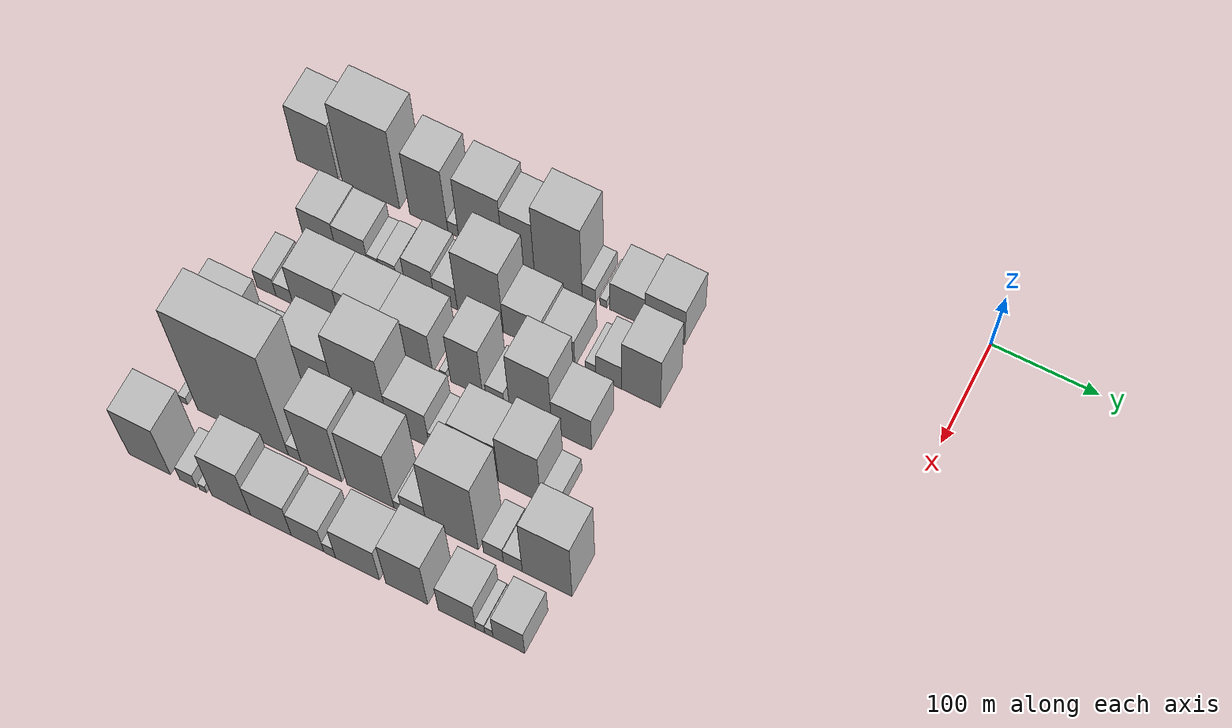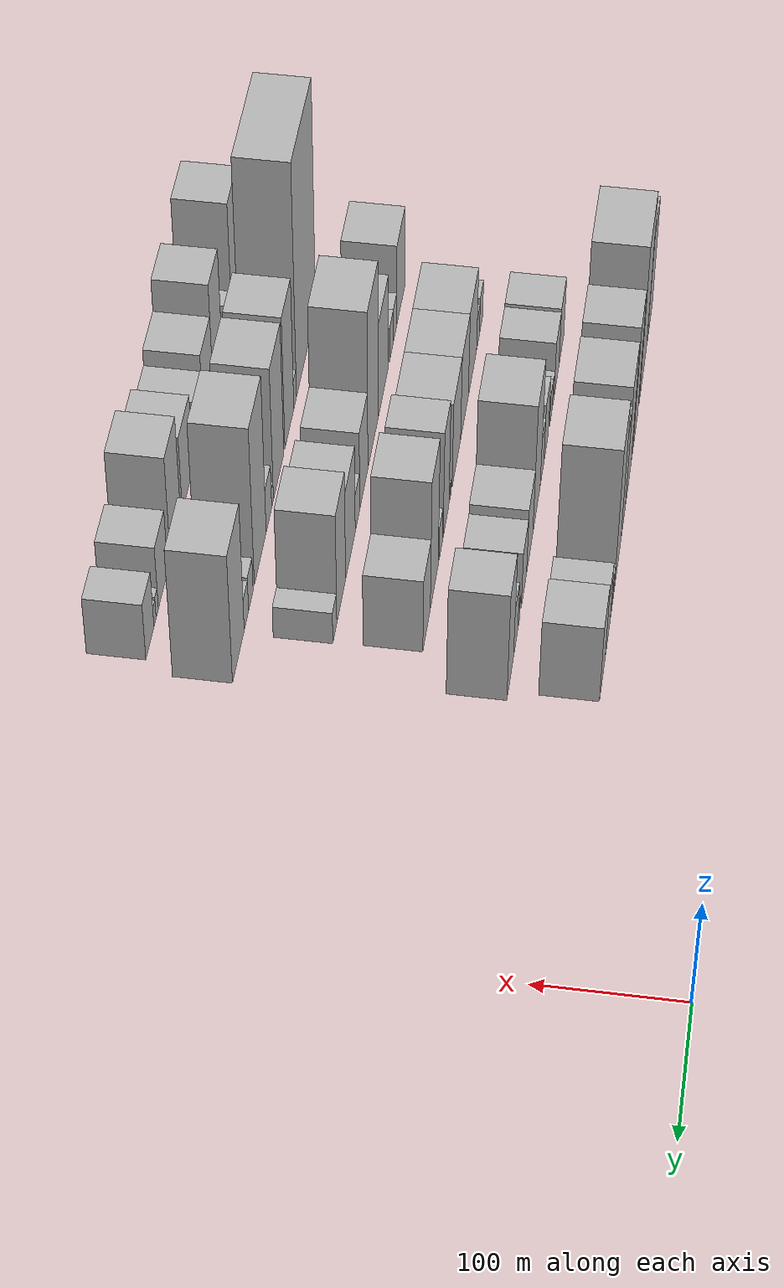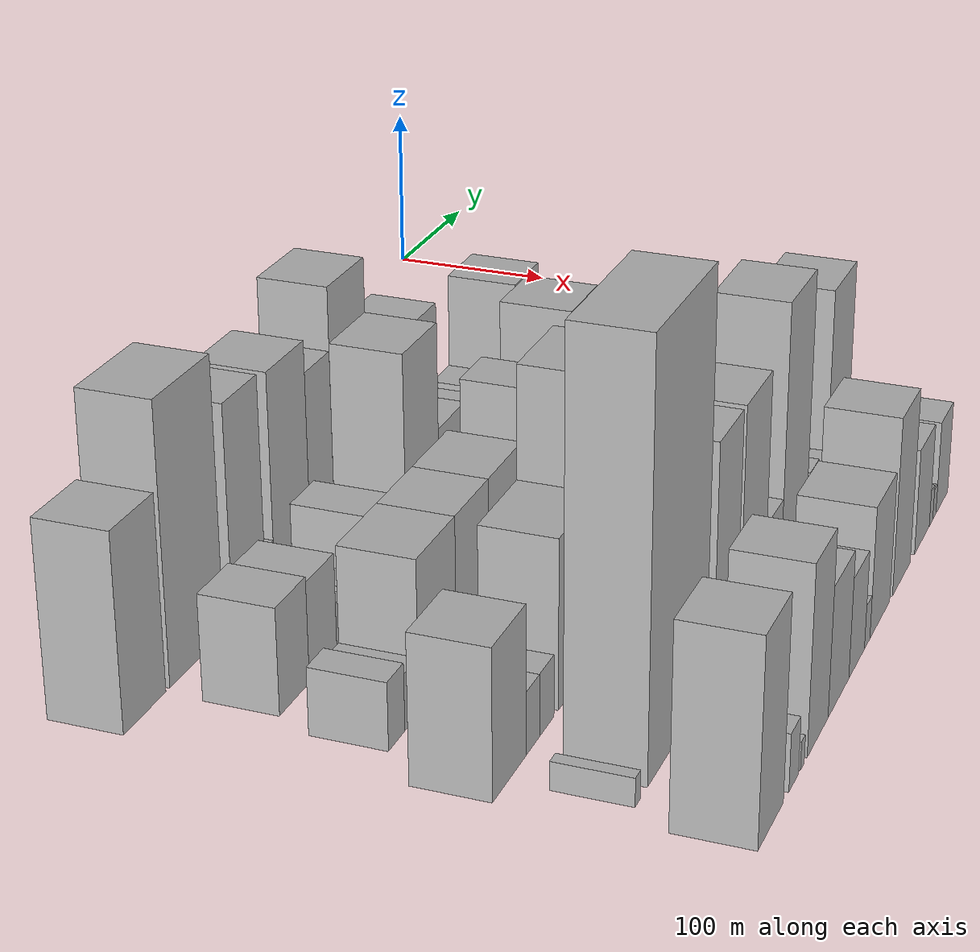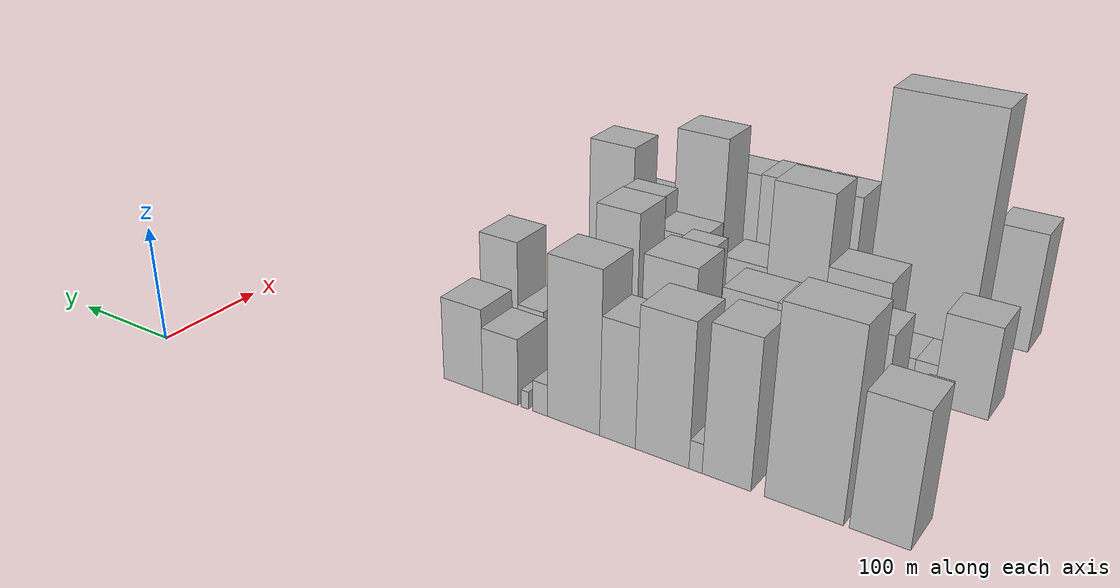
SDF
<sdf version="1.6">
 <world name="default">
  <model name="building_12">
   <static>1</static>
   <pose>100.0000 -589.0660 0 0.000000 0.000000 0.000000</pose>
   <link name="link">
    <pose>0 0 52.50 0 0 0</pose>
    <collision name="collision"><geometry><box><size>40.0000 41.7099 105.0000</size></box></geometry></collision>
    <visual name="visual">
     <cast_shadows>0</cast_shadows>
     <geometry><box><size>40.0000 41.7099 105.0000</size></box></geometry>
     <material>
      <script>
       <uri>model://HANNAS_wall/materials/scripts</uri>
       <uri>model://HANNAS_wall/materials/textures</uri>
       <name>vrc/HANNAS_wall</name>
      </script>
     </material>
    </visual>
   </link>
  </model>
  <model name="building_13">
   <static>1</static>
   <pose>100.0000 -535.7185 0 0.000000 0.000000 0.000000</pose>
   <link name="link">
    <pose>0 0 75.00 0 0 0</pose>
    <collision name="collision"><geometry><box><size>40.0000 56.9851 150.0000</size></box></geometry></collision>
    <visual name="visual">
     <cast_shadows>0</cast_shadows>
     <geometry><box><size>40.0000 56.9851 150.0000</size></box></geometry>
     <material>
      <script>
       <uri>model://HANNAS_wall/materials/scripts</uri>
       <uri>model://HANNAS_wall/materials/textures</uri>
       <name>vrc/HANNAS_wall</name>
      </script>
     </material>
    </visual>
   </link>
  </model>
  <model name="building_14">
   <static>1</static>
   <pose>100.0000 -478.4410 0 0.000000 0.000000 0.000000</pose>
   <link name="link">
    <pose>0 0 60.00 0 0 0</pose>
    <collision name="collision"><geometry><box><size>40.0000 37.5699 120.0000</size></box></geometry></collision>
    <visual name="visual">
     <cast_shadows>0</cast_shadows>
     <geometry><box><size>40.0000 37.5699 120.0000</size></box></geometry>
     <material>
      <script>
       <uri>model://HANNAS_wall/materials/scripts</uri>
       <uri>model://HANNAS_wall/materials/textures</uri>
       <name>vrc/HANNAS_wall</name>
      </script>
     </material>
    </visual>
   </link>
  </model>
  <model name="building_15">
   <static>1</static>
   <pose>100.0000 -454.4406 0 0.000000 0.000000 0.000000</pose>
   <link name="link">
    <pose>0 0 12.00 0 0 0</pose>
    <collision name="collision"><geometry><box><size>40.0000 10.4310 24.0000</size></box></geometry></collision>
    <visual name="visual">
     <cast_shadows>0</cast_shadows>
     <geometry><box><size>40.0000 10.4310 24.0000</size></box></geometry>
     <material>
      <script>
       <uri>model://HANNAS_wall/materials/scripts</uri>
       <uri>model://HANNAS_wall/materials/textures</uri>
       <name>vrc/HANNAS_wall</name>
      </script>
     </material>
    </visual>
   </link>
  </model>
  <model name="building_16">
   <static>1</static>
   <pose>100.0000 -427.4320 0 0.000000 0.000000 0.000000</pose>
   <link name="link">
    <pose>0 0 58.50 0 0 0</pose>
    <collision name="collision"><geometry><box><size>40.0000 43.5862 117.0000</size></box></geometry></collision>
    <visual name="visual">
     <cast_shadows>0</cast_shadows>
     <geometry><box><size>40.0000 43.5862 117.0000</size></box></geometry>
     <material>
      <script>
       <uri>model://HANNAS_wall/materials/scripts</uri>
       <uri>model://HANNAS_wall/materials/textures</uri>
       <name>vrc/HANNAS_wall</name>
      </script>
     </material>
    </visual>
   </link>
  </model>
  <model name="building_17">
   <static>1</static>
   <pose>100.0000 -390.4925 0 0.000000 0.000000 0.000000</pose>
   <link name="link">
    <pose>0 0 49.50 0 0 0</pose>
    <collision name="collision"><geometry><box><size>40.0000 30.2928 99.0000</size></box></geometry></collision>
    <visual name="visual">
     <cast_shadows>0</cast_shadows>
     <geometry><box><size>40.0000 30.2928 99.0000</size></box></geometry>
     <material>
      <script>
       <uri>model://HANNAS_wall/materials/scripts</uri>
       <uri>model://HANNAS_wall/materials/textures</uri>
       <name>vrc/HANNAS_wall</name>
      </script>
     </material>
    </visual>
   </link>
  </model>
  <model name="building_18">
   <static>1</static>
   <pose>100.0000 -352.2517 0 0.000000 0.000000 0.000000</pose>
   <link name="link">
    <pose>0 0 67.50 0 0 0</pose>
    <collision name="collision"><geometry><box><size>40.0000 46.1887 135.0000</size></box></geometry></collision>
    <visual name="visual">
     <cast_shadows>0</cast_shadows>
     <geometry><box><size>40.0000 46.1887 135.0000</size></box></geometry>
     <material>
      <script>
       <uri>model://HANNAS_wall/materials/scripts</uri>
       <uri>model://HANNAS_wall/materials/textures</uri>
       <name>vrc/HANNAS_wall</name>
      </script>
     </material>
    </visual>
   </link>
  </model>
  <model name="building_19">
   <static>1</static>
   <pose>100.0000 -322.6024 0 0.000000 0.000000 0.000000</pose>
   <link name="link">
    <pose>0 0 13.50 0 0 0</pose>
    <collision name="collision"><geometry><box><size>40.0000 13.1100 27.0000</size></box></geometry></collision>
    <visual name="visual">
     <cast_shadows>0</cast_shadows>
     <geometry><box><size>40.0000 13.1100 27.0000</size></box></geometry>
     <material>
      <script>
       <uri>model://HANNAS_wall/materials/scripts</uri>
       <uri>model://HANNAS_wall/materials/textures</uri>
       <name>vrc/HANNAS_wall</name>
      </script>
     </material>
    </visual>
   </link>
  </model>
  <model name="building_20">
   <static>1</static>
   <pose>100.0000 -308.6756 0 0.000000 0.000000 0.000000</pose>
   <link name="link">
    <pose>0 0 7.50 0 0 0</pose>
    <collision name="collision"><geometry><box><size>40.0000 6.7435 15.0000</size></box></geometry></collision>
    <visual name="visual">
     <cast_shadows>0</cast_shadows>
     <geometry><box><size>40.0000 6.7435 15.0000</size></box></geometry>
     <material>
      <script>
       <uri>model://HANNAS_wall/materials/scripts</uri>
       <uri>model://HANNAS_wall/materials/textures</uri>
       <name>vrc/HANNAS_wall</name>
      </script>
     </material>
    </visual>
   </link>
  </model>
  <model name="building_21">
   <static>1</static>
   <pose>100.0000 -285.6280 0 0.000000 0.000000 0.000000</pose>
   <link name="link">
    <pose>0 0 28.50 0 0 0</pose>
    <collision name="collision"><geometry><box><size>40.0000 33.3519 57.0000</size></box></geometry></collision>
    <visual name="visual">
     <cast_shadows>0</cast_shadows>
     <geometry><box><size>40.0000 33.3519 57.0000</size></box></geometry>
     <material>
      <script>
       <uri>model://HANNAS_wall/materials/scripts</uri>
       <uri>model://HANNAS_wall/materials/textures</uri>
       <name>vrc/HANNAS_wall</name>
      </script>
     </material>
    </visual>
   </link>
  </model>
  <model name="building_22">
   <static>1</static>
   <pose>100.0000 -249.9652 0 0.000000 0.000000 0.000000</pose>
   <link name="link">
    <pose>0 0 36.00 0 0 0</pose>
    <collision name="collision"><geometry><box><size>40.0000 37.9737 72.0000</size></box></geometry></collision>
    <visual name="visual">
     <cast_shadows>0</cast_shadows>
     <geometry><box><size>40.0000 37.9737 72.0000</size></box></geometry>
     <material>
      <script>
       <uri>model://HANNAS_wall/materials/scripts</uri>
       <uri>model://HANNAS_wall/materials/textures</uri>
       <name>vrc/HANNAS_wall</name>
      </script>
     </material>
    </visual>
   </link>
  </model>
  <model name="building_67">
   <static>1</static>
   <pose>160.0000 -552.9038 0 0.000000 0.000000 0.000000</pose>
   <link name="link">
    <pose>0 0 28.50 0 0 0</pose>
    <collision name="collision"><geometry><box><size>40.0000 32.9350 57.0000</size></box></geometry></collision>
    <visual name="visual">
     <cast_shadows>0</cast_shadows>
     <geometry><box><size>40.0000 32.9350 57.0000</size></box></geometry>
     <material>
      <script>
       <uri>model://HANNAS_wall/materials/scripts</uri>
       <uri>model://HANNAS_wall/materials/textures</uri>
       <name>vrc/HANNAS_wall</name>
      </script>
     </material>
    </visual>
   </link>
  </model>
  <model name="building_68">
   <static>1</static>
   <pose>160.0000 -520.5851 0 0.000000 0.000000 0.000000</pose>
   <link name="link">
    <pose>0 0 27.00 0 0 0</pose>
    <collision name="collision"><geometry><box><size>40.0000 31.7025 54.0000</size></box></geometry></collision>
    <visual name="visual">
     <cast_shadows>0</cast_shadows>
     <geometry><box><size>40.0000 31.7025 54.0000</size></box></geometry>
     <material>
      <script>
       <uri>model://HANNAS_wall/materials/scripts</uri>
       <uri>model://HANNAS_wall/materials/textures</uri>
       <name>vrc/HANNAS_wall</name>
      </script>
     </material>
    </visual>
   </link>
  </model>
  <model name="building_69">
   <static>1</static>
   <pose>160.0000 -499.2107 0 0.000000 0.000000 0.000000</pose>
   <link name="link">
    <pose>0 0 13.50 0 0 0</pose>
    <collision name="collision"><geometry><box><size>40.0000 11.0464 27.0000</size></box></geometry></collision>
    <visual name="visual">
     <cast_shadows>0</cast_shadows>
     <geometry><box><size>40.0000 11.0464 27.0000</size></box></geometry>
     <material>
      <script>
       <uri>model://HANNAS_wall/materials/scripts</uri>
       <uri>model://HANNAS_wall/materials/textures</uri>
       <name>vrc/HANNAS_wall</name>
      </script>
     </material>
    </visual>
   </link>
  </model>
  <model name="building_70">
   <static>1</static>
   <pose>160.0000 -485.2275 0 0.000000 0.000000 0.000000</pose>
   <link name="link">
    <pose>0 0 15.00 0 0 0</pose>
    <collision name="collision"><geometry><box><size>40.0000 16.9200 30.0000</size></box></geometry></collision>
    <visual name="visual">
     <cast_shadows>0</cast_shadows>
     <geometry><box><size>40.0000 16.9200 30.0000</size></box></geometry>
     <material>
      <script>
       <uri>model://HANNAS_wall/materials/scripts</uri>
       <uri>model://HANNAS_wall/materials/textures</uri>
       <name>vrc/HANNAS_wall</name>
      </script>
     </material>
    </visual>
   </link>
  </model>
  <model name="building_71">
   <static>1</static>
   <pose>160.0000 -454.5164 0 0.000000 0.000000 0.000000</pose>
   <link name="link">
    <pose>0 0 28.50 0 0 0</pose>
    <collision name="collision"><geometry><box><size>40.0000 28.5022 57.0000</size></box></geometry></collision>
    <visual name="visual">
     <cast_shadows>0</cast_shadows>
     <geometry><box><size>40.0000 28.5022 57.0000</size></box></geometry>
     <material>
      <script>
       <uri>model://HANNAS_wall/materials/scripts</uri>
       <uri>model://HANNAS_wall/materials/textures</uri>
       <name>vrc/HANNAS_wall</name>
      </script>
     </material>
    </visual>
   </link>
  </model>
  <model name="building_72">
   <static>1</static>
   <pose>160.0000 -428.9410 0 0.000000 0.000000 0.000000</pose>
   <link name="link">
    <pose>0 0 22.50 0 0 0</pose>
    <collision name="collision"><geometry><box><size>40.0000 22.6488 45.0000</size></box></geometry></collision>
    <visual name="visual">
     <cast_shadows>0</cast_shadows>
     <geometry><box><size>40.0000 22.6488 45.0000</size></box></geometry>
     <material>
      <script>
       <uri>model://HANNAS_wall/materials/scripts</uri>
       <uri>model://HANNAS_wall/materials/textures</uri>
       <name>vrc/HANNAS_wall</name>
      </script>
     </material>
    </visual>
   </link>
  </model>
  <model name="building_73">
   <static>1</static>
   <pose>160.0000 -395.3346 0 0.000000 0.000000 0.000000</pose>
   <link name="link">
    <pose>0 0 61.50 0 0 0</pose>
    <collision name="collision"><geometry><box><size>40.0000 44.5640 123.0000</size></box></geometry></collision>
    <visual name="visual">
     <cast_shadows>0</cast_shadows>
     <geometry><box><size>40.0000 44.5640 123.0000</size></box></geometry>
     <material>
      <script>
       <uri>model://HANNAS_wall/materials/scripts</uri>
       <uri>model://HANNAS_wall/materials/textures</uri>
       <name>vrc/HANNAS_wall</name>
      </script>
     </material>
    </visual>
   </link>
  </model>
  <model name="building_74">
   <static>1</static>
   <pose>160.0000 -354.2393 0 0.000000 0.000000 0.000000</pose>
   <link name="link">
    <pose>0 0 31.50 0 0 0</pose>
    <collision name="collision"><geometry><box><size>40.0000 37.6266 63.0000</size></box></geometry></collision>
    <visual name="visual">
     <cast_shadows>0</cast_shadows>
     <geometry><box><size>40.0000 37.6266 63.0000</size></box></geometry>
     <material>
      <script>
       <uri>model://HANNAS_wall/materials/scripts</uri>
       <uri>model://HANNAS_wall/materials/textures</uri>
       <name>vrc/HANNAS_wall</name>
      </script>
     </material>
    </visual>
   </link>
  </model>
  <model name="building_75">
   <static>1</static>
   <pose>160.0000 -319.9886 0 0.000000 0.000000 0.000000</pose>
   <link name="link">
    <pose>0 0 27.00 0 0 0</pose>
    <collision name="collision"><geometry><box><size>40.0000 30.8747 54.0000</size></box></geometry></collision>
    <visual name="visual">
     <cast_shadows>0</cast_shadows>
     <geometry><box><size>40.0000 30.8747 54.0000</size></box></geometry>
     <material>
      <script>
       <uri>model://HANNAS_wall/materials/scripts</uri>
       <uri>model://HANNAS_wall/materials/textures</uri>
       <name>vrc/HANNAS_wall</name>
      </script>
     </material>
    </visual>
   </link>
  </model>
  <model name="building_76">
   <static>1</static>
   <pose>160.0000 -289.6225 0 0.000000 0.000000 0.000000</pose>
   <link name="link">
    <pose>0 0 12.00 0 0 0</pose>
    <collision name="collision"><geometry><box><size>40.0000 9.8574 24.0000</size></box></geometry></collision>
    <visual name="visual">
     <cast_shadows>0</cast_shadows>
     <geometry><box><size>40.0000 9.8574 24.0000</size></box></geometry>
     <material>
      <script>
       <uri>model://HANNAS_wall/materials/scripts</uri>
       <uri>model://HANNAS_wall/materials/textures</uri>
       <name>vrc/HANNAS_wall</name>
      </script>
     </material>
    </visual>
   </link>
  </model>
  <model name="building_77">
   <static>1</static>
   <pose>160.0000 -272.3909 0 0.000000 0.000000 0.000000</pose>
   <link name="link">
    <pose>0 0 24.00 0 0 0</pose>
    <collision name="collision"><geometry><box><size>40.0000 24.6058 48.0000</size></box></geometry></collision>
    <visual name="visual">
     <cast_shadows>0</cast_shadows>
     <geometry><box><size>40.0000 24.6058 48.0000</size></box></geometry>
     <material>
      <script>
       <uri>model://HANNAS_wall/materials/scripts</uri>
       <uri>model://HANNAS_wall/materials/textures</uri>
       <name>vrc/HANNAS_wall</name>
      </script>
     </material>
    </visual>
   </link>
  </model>
  <model name="building_78">
   <static>1</static>
   <pose>160.0000 -241.7498 0 0.000000 0.000000 0.000000</pose>
   <link name="link">
    <pose>0 0 51.00 0 0 0</pose>
    <collision name="collision"><geometry><box><size>40.0000 36.6765 102.0000</size></box></geometry></collision>
    <visual name="visual">
     <cast_shadows>0</cast_shadows>
     <geometry><box><size>40.0000 36.6765 102.0000</size></box></geometry>
     <material>
      <script>
       <uri>model://HANNAS_wall/materials/scripts</uri>
       <uri>model://HANNAS_wall/materials/textures</uri>
       <name>vrc/HANNAS_wall</name>
      </script>
     </material>
    </visual>
   </link>
  </model>
  <model name="building_124">
   <static>1</static>
   <pose>220.0000 -570.8083 0 0.000000 0.000000 0.000000</pose>
   <link name="link">
    <pose>0 0 18.00 0 0 0</pose>
    <collision name="collision"><geometry><box><size>40.0000 19.0090 36.0000</size></box></geometry></collision>
    <visual name="visual">
     <cast_shadows>0</cast_shadows>
     <geometry><box><size>40.0000 19.0090 36.0000</size></box></geometry>
     <material>
      <script>
       <uri>model://HANNAS_wall/materials/scripts</uri>
       <uri>model://HANNAS_wall/materials/textures</uri>
       <name>vrc/HANNAS_wall</name>
      </script>
     </material>
    </visual>
   </link>
  </model>
  <model name="building_125">
   <static>1</static>
   <pose>220.0000 -553.0205 0 0.000000 0.000000 0.000000</pose>
   <link name="link">
    <pose>0 0 15.00 0 0 0</pose>
    <collision name="collision"><geometry><box><size>40.0000 16.5666 30.0000</size></box></geometry></collision>
    <visual name="visual">
     <cast_shadows>0</cast_shadows>
     <geometry><box><size>40.0000 16.5666 30.0000</size></box></geometry>
     <material>
      <script>
       <uri>model://HANNAS_wall/materials/scripts</uri>
       <uri>model://HANNAS_wall/materials/textures</uri>
       <name>vrc/HANNAS_wall</name>
      </script>
     </material>
    </visual>
   </link>
  </model>
  <model name="building_126">
   <static>1</static>
   <pose>220.0000 -521.1531 0 0.000000 0.000000 0.000000</pose>
   <link name="link">
    <pose>0 0 40.50 0 0 0</pose>
    <collision name="collision"><geometry><box><size>40.0000 47.1681 81.0000</size></box></geometry></collision>
    <visual name="visual">
     <cast_shadows>0</cast_shadows>
     <geometry><box><size>40.0000 47.1681 81.0000</size></box></geometry>
     <material>
      <script>
       <uri>model://HANNAS_wall/materials/scripts</uri>
       <uri>model://HANNAS_wall/materials/textures</uri>
       <name>vrc/HANNAS_wall</name>
      </script>
     </material>
    </visual>
   </link>
  </model>
  <model name="building_127">
   <static>1</static>
   <pose>220.0000 -475.9571 0 0.000000 0.000000 0.000000</pose>
   <link name="link">
    <pose>0 0 40.50 0 0 0</pose>
    <collision name="collision"><geometry><box><size>40.0000 43.2240 81.0000</size></box></geometry></collision>
    <visual name="visual">
     <cast_shadows>0</cast_shadows>
     <geometry><box><size>40.0000 43.2240 81.0000</size></box></geometry>
     <material>
      <script>
       <uri>model://HANNAS_wall/materials/scripts</uri>
       <uri>model://HANNAS_wall/materials/textures</uri>
       <name>vrc/HANNAS_wall</name>
      </script>
     </material>
    </visual>
   </link>
  </model>
  <model name="building_128">
   <static>1</static>
   <pose>220.0000 -431.4639 0 0.000000 0.000000 0.000000</pose>
   <link name="link">
    <pose>0 0 40.50 0 0 0</pose>
    <collision name="collision"><geometry><box><size>40.0000 45.7623 81.0000</size></box></geometry></collision>
    <visual name="visual">
     <cast_shadows>0</cast_shadows>
     <geometry><box><size>40.0000 45.7623 81.0000</size></box></geometry>
     <material>
      <script>
       <uri>model://HANNAS_wall/materials/scripts</uri>
       <uri>model://HANNAS_wall/materials/textures</uri>
       <name>vrc/HANNAS_wall</name>
      </script>
     </material>
    </visual>
   </link>
  </model>
  <model name="building_129">
   <static>1</static>
   <pose>220.0000 -398.5072 0 0.000000 0.000000 0.000000</pose>
   <link name="link">
    <pose>0 0 7.50 0 0 0</pose>
    <collision name="collision"><geometry><box><size>40.0000 6.1512 15.0000</size></box></geometry></collision>
    <visual name="visual">
     <cast_shadows>0</cast_shadows>
     <geometry><box><size>40.0000 6.1512 15.0000</size></box></geometry>
     <material>
      <script>
       <uri>model://HANNAS_wall/materials/scripts</uri>
       <uri>model://HANNAS_wall/materials/textures</uri>
       <name>vrc/HANNAS_wall</name>
      </script>
     </material>
    </visual>
   </link>
  </model>
  <model name="building_130">
   <static>1</static>
   <pose>220.0000 -375.9630 0 0.000000 0.000000 0.000000</pose>
   <link name="link">
    <pose>0 0 51.00 0 0 0</pose>
    <collision name="collision"><geometry><box><size>40.0000 30.9372 102.0000</size></box></geometry></collision>
    <visual name="visual">
     <cast_shadows>0</cast_shadows>
     <geometry><box><size>40.0000 30.9372 102.0000</size></box></geometry>
     <material>
      <script>
       <uri>model://HANNAS_wall/materials/scripts</uri>
       <uri>model://HANNAS_wall/materials/textures</uri>
       <name>vrc/HANNAS_wall</name>
      </script>
     </material>
    </visual>
   </link>
  </model>
  <model name="building_131">
   <static>1</static>
   <pose>220.0000 -348.6849 0 0.000000 0.000000 0.000000</pose>
   <link name="link">
    <pose>0 0 16.50 0 0 0</pose>
    <collision name="collision"><geometry><box><size>40.0000 17.6191 33.0000</size></box></geometry></collision>
    <visual name="visual">
     <cast_shadows>0</cast_shadows>
     <geometry><box><size>40.0000 17.6191 33.0000</size></box></geometry>
     <material>
      <script>
       <uri>model://HANNAS_wall/materials/scripts</uri>
       <uri>model://HANNAS_wall/materials/textures</uri>
       <name>vrc/HANNAS_wall</name>
      </script>
     </material>
    </visual>
   </link>
  </model>
  <model name="building_132">
   <static>1</static>
   <pose>220.0000 -314.8376 0 0.000000 0.000000 0.000000</pose>
   <link name="link">
    <pose>0 0 61.50 0 0 0</pose>
    <collision name="collision"><geometry><box><size>40.0000 40.0756 123.0000</size></box></geometry></collision>
    <visual name="visual">
     <cast_shadows>0</cast_shadows>
     <geometry><box><size>40.0000 40.0756 123.0000</size></box></geometry>
     <material>
      <script>
       <uri>model://HANNAS_wall/materials/scripts</uri>
       <uri>model://HANNAS_wall/materials/textures</uri>
       <name>vrc/HANNAS_wall</name>
      </script>
     </material>
    </visual>
   </link>
  </model>
  <model name="building_133">
   <static>1</static>
   <pose>220.0000 -276.0736 0 0.000000 0.000000 0.000000</pose>
   <link name="link">
    <pose>0 0 34.50 0 0 0</pose>
    <collision name="collision"><geometry><box><size>40.0000 37.4525 69.0000</size></box></geometry></collision>
    <visual name="visual">
     <cast_shadows>0</cast_shadows>
     <geometry><box><size>40.0000 37.4525 69.0000</size></box></geometry>
     <material>
      <script>
       <uri>model://HANNAS_wall/materials/scripts</uri>
       <uri>model://HANNAS_wall/materials/textures</uri>
       <name>vrc/HANNAS_wall</name>
      </script>
     </material>
    </visual>
   </link>
  </model>
  <model name="building_178">
   <static>1</static>
   <pose>280.0000 -582.7200 0 0.000000 0.000000 0.000000</pose>
   <link name="link">
    <pose>0 0 39.00 0 0 0</pose>
    <collision name="collision"><geometry><box><size>40.0000 42.2072 78.0000</size></box></geometry></collision>
    <visual name="visual">
     <cast_shadows>0</cast_shadows>
     <geometry><box><size>40.0000 42.2072 78.0000</size></box></geometry>
     <material>
      <script>
       <uri>model://HANNAS_wall/materials/scripts</uri>
       <uri>model://HANNAS_wall/materials/textures</uri>
       <name>vrc/HANNAS_wall</name>
      </script>
     </material>
    </visual>
   </link>
  </model>
  <model name="building_179">
   <static>1</static>
   <pose>280.0000 -552.9455 0 0.000000 0.000000 0.000000</pose>
   <link name="link">
    <pose>0 0 16.50 0 0 0</pose>
    <collision name="collision"><geometry><box><size>40.0000 17.3418 33.0000</size></box></geometry></collision>
    <visual name="visual">
     <cast_shadows>0</cast_shadows>
     <geometry><box><size>40.0000 17.3418 33.0000</size></box></geometry>
     <material>
      <script>
       <uri>model://HANNAS_wall/materials/scripts</uri>
       <uri>model://HANNAS_wall/materials/textures</uri>
       <name>vrc/HANNAS_wall</name>
      </script>
     </material>
    </visual>
   </link>
  </model>
  <model name="building_180">
   <static>1</static>
   <pose>280.0000 -534.6534 0 0.000000 0.000000 0.000000</pose>
   <link name="link">
    <pose>0 0 16.50 0 0 0</pose>
    <collision name="collision"><geometry><box><size>40.0000 19.2424 33.0000</size></box></geometry></collision>
    <visual name="visual">
     <cast_shadows>0</cast_shadows>
     <geometry><box><size>40.0000 19.2424 33.0000</size></box></geometry>
     <material>
      <script>
       <uri>model://HANNAS_wall/materials/scripts</uri>
       <uri>model://HANNAS_wall/materials/textures</uri>
       <name>vrc/HANNAS_wall</name>
      </script>
     </material>
    </visual>
   </link>
  </model>
  <model name="building_181">
   <static>1</static>
   <pose>280.0000 -493.4833 0 0.000000 0.000000 0.000000</pose>
   <link name="link">
    <pose>0 0 45.00 0 0 0</pose>
    <collision name="collision"><geometry><box><size>40.0000 51.0977 90.0000</size></box></geometry></collision>
    <visual name="visual">
     <cast_shadows>0</cast_shadows>
     <geometry><box><size>40.0000 51.0977 90.0000</size></box></geometry>
     <material>
      <script>
       <uri>model://HANNAS_wall/materials/scripts</uri>
       <uri>model://HANNAS_wall/materials/textures</uri>
       <name>vrc/HANNAS_wall</name>
      </script>
     </material>
    </visual>
   </link>
  </model>
  <model name="building_182">
   <static>1</static>
   <pose>280.0000 -442.7218 0 0.000000 0.000000 0.000000</pose>
   <link name="link">
    <pose>0 0 75.00 0 0 0</pose>
    <collision name="collision"><geometry><box><size>40.0000 50.4254 150.0000</size></box></geometry></collision>
    <visual name="visual">
     <cast_shadows>0</cast_shadows>
     <geometry><box><size>40.0000 50.4254 150.0000</size></box></geometry>
     <material>
      <script>
       <uri>model://HANNAS_wall/materials/scripts</uri>
       <uri>model://HANNAS_wall/materials/textures</uri>
       <name>vrc/HANNAS_wall</name>
      </script>
     </material>
    </visual>
   </link>
  </model>
  <model name="building_183">
   <static>1</static>
   <pose>280.0000 -398.0640 0 0.000000 0.000000 0.000000</pose>
   <link name="link">
    <pose>0 0 37.50 0 0 0</pose>
    <collision name="collision"><geometry><box><size>40.0000 38.8902 75.0000</size></box></geometry></collision>
    <visual name="visual">
     <cast_shadows>0</cast_shadows>
     <geometry><box><size>40.0000 38.8902 75.0000</size></box></geometry>
     <material>
      <script>
       <uri>model://HANNAS_wall/materials/scripts</uri>
       <uri>model://HANNAS_wall/materials/textures</uri>
       <name>vrc/HANNAS_wall</name>
      </script>
     </material>
    </visual>
   </link>
  </model>
  <model name="building_184">
   <static>1</static>
   <pose>280.0000 -368.1640 0 0.000000 0.000000 0.000000</pose>
   <link name="link">
    <pose>0 0 18.00 0 0 0</pose>
    <collision name="collision"><geometry><box><size>40.0000 20.9098 36.0000</size></box></geometry></collision>
    <visual name="visual">
     <cast_shadows>0</cast_shadows>
     <geometry><box><size>40.0000 20.9098 36.0000</size></box></geometry>
     <material>
      <script>
       <uri>model://HANNAS_wall/materials/scripts</uri>
       <uri>model://HANNAS_wall/materials/textures</uri>
       <name>vrc/HANNAS_wall</name>
      </script>
     </material>
    </visual>
   </link>
  </model>
  <model name="building_185">
   <static>1</static>
   <pose>280.0000 -335.4610 0 0.000000 0.000000 0.000000</pose>
   <link name="link">
    <pose>0 0 42.00 0 0 0</pose>
    <collision name="collision"><geometry><box><size>40.0000 44.4964 84.0000</size></box></geometry></collision>
    <visual name="visual">
     <cast_shadows>0</cast_shadows>
     <geometry><box><size>40.0000 44.4964 84.0000</size></box></geometry>
     <material>
      <script>
       <uri>model://HANNAS_wall/materials/scripts</uri>
       <uri>model://HANNAS_wall/materials/textures</uri>
       <name>vrc/HANNAS_wall</name>
      </script>
     </material>
    </visual>
   </link>
  </model>
  <model name="building_186">
   <static>1</static>
   <pose>280.0000 -293.4321 0 0.000000 0.000000 0.000000</pose>
   <link name="link">
    <pose>0 0 52.50 0 0 0</pose>
    <collision name="collision"><geometry><box><size>40.0000 39.5614 105.0000</size></box></geometry></collision>
    <visual name="visual">
     <cast_shadows>0</cast_shadows>
     <geometry><box><size>40.0000 39.5614 105.0000</size></box></geometry>
     <material>
      <script>
       <uri>model://HANNAS_wall/materials/scripts</uri>
       <uri>model://HANNAS_wall/materials/textures</uri>
       <name>vrc/HANNAS_wall</name>
      </script>
     </material>
    </visual>
   </link>
  </model>
  <model name="building_187">
   <static>1</static>
   <pose>280.0000 -264.8473 0 0.000000 0.000000 0.000000</pose>
   <link name="link">
    <pose>0 0 15.00 0 0 0</pose>
    <collision name="collision"><geometry><box><size>40.0000 17.6081 30.0000</size></box></geometry></collision>
    <visual name="visual">
     <cast_shadows>0</cast_shadows>
     <geometry><box><size>40.0000 17.6081 30.0000</size></box></geometry>
     <material>
      <script>
       <uri>model://HANNAS_wall/materials/scripts</uri>
       <uri>model://HANNAS_wall/materials/textures</uri>
       <name>vrc/HANNAS_wall</name>
      </script>
     </material>
    </visual>
   </link>
  </model>
  <model name="building_238">
   <static>1</static>
   <pose>340.0000 -581.6116 0 0.000000 0.000000 0.000000</pose>
   <link name="link">
    <pose>0 0 7.50 0 0 0</pose>
    <collision name="collision"><geometry><box><size>40.0000 7.3989 15.0000</size></box></geometry></collision>
    <visual name="visual">
     <cast_shadows>0</cast_shadows>
     <geometry><box><size>40.0000 7.3989 15.0000</size></box></geometry>
     <material>
      <script>
       <uri>model://HANNAS_wall/materials/scripts</uri>
       <uri>model://HANNAS_wall/materials/textures</uri>
       <name>vrc/HANNAS_wall</name>
      </script>
     </material>
    </visual>
   </link>
  </model>
  <model name="building_239">
   <static>1</static>
   <pose>340.0000 -524.1280 0 0.000000 0.000000 0.000000</pose>
   <link name="link">
    <pose>0 0 109.50 0 0 0</pose>
    <collision name="collision"><geometry><box><size>40.0000 87.5683 219.0000</size></box></geometry></collision>
    <visual name="visual">
     <cast_shadows>0</cast_shadows>
     <geometry><box><size>40.0000 87.5683 219.0000</size></box></geometry>
     <material>
      <script>
       <uri>model://HANNAS_wall/materials/scripts</uri>
       <uri>model://HANNAS_wall/materials/textures</uri>
       <name>vrc/HANNAS_wall</name>
      </script>
     </material>
    </visual>
   </link>
  </model>
  <model name="building_240">
   <static>1</static>
   <pose>340.0000 -474.2143 0 0.000000 0.000000 0.000000</pose>
   <link name="link">
    <pose>0 0 13.50 0 0 0</pose>
    <collision name="collision"><geometry><box><size>40.0000 12.2590 27.0000</size></box></geometry></collision>
    <visual name="visual">
     <cast_shadows>0</cast_shadows>
     <geometry><box><size>40.0000 12.2590 27.0000</size></box></geometry>
     <material>
      <script>
       <uri>model://HANNAS_wall/materials/scripts</uri>
       <uri>model://HANNAS_wall/materials/textures</uri>
       <name>vrc/HANNAS_wall</name>
      </script>
     </material>
    </visual>
   </link>
  </model>
  <model name="building_241">
   <static>1</static>
   <pose>340.0000 -448.5618 0 0.000000 0.000000 0.000000</pose>
   <link name="link">
    <pose>0 0 63.00 0 0 0</pose>
    <collision name="collision"><geometry><box><size>40.0000 39.0460 126.0000</size></box></geometry></collision>
    <visual name="visual">
     <cast_shadows>0</cast_shadows>
     <geometry><box><size>40.0000 39.0460 126.0000</size></box></geometry>
     <material>
      <script>
       <uri>model://HANNAS_wall/materials/scripts</uri>
       <uri>model://HANNAS_wall/materials/textures</uri>
       <name>vrc/HANNAS_wall</name>
      </script>
     </material>
    </visual>
   </link>
  </model>
  <model name="building_242">
   <static>1</static>
   <pose>340.0000 -401.7744 0 0.000000 0.000000 0.000000</pose>
   <link name="link">
    <pose>0 0 63.00 0 0 0</pose>
    <collision name="collision"><geometry><box><size>40.0000 44.5288 126.0000</size></box></geometry></collision>
    <visual name="visual">
     <cast_shadows>0</cast_shadows>
     <geometry><box><size>40.0000 44.5288 126.0000</size></box></geometry>
     <material>
      <script>
       <uri>model://HANNAS_wall/materials/scripts</uri>
       <uri>model://HANNAS_wall/materials/textures</uri>
       <name>vrc/HANNAS_wall</name>
      </script>
     </material>
    </visual>
   </link>
  </model>
  <model name="building_243">
   <static>1</static>
   <pose>340.0000 -375.7302 0 0.000000 0.000000 0.000000</pose>
   <link name="link">
    <pose>0 0 9.00 0 0 0</pose>
    <collision name="collision"><geometry><box><size>40.0000 7.5596 18.0000</size></box></geometry></collision>
    <visual name="visual">
     <cast_shadows>0</cast_shadows>
     <geometry><box><size>40.0000 7.5596 18.0000</size></box></geometry>
     <material>
      <script>
       <uri>model://HANNAS_wall/materials/scripts</uri>
       <uri>model://HANNAS_wall/materials/textures</uri>
       <name>vrc/HANNAS_wall</name>
      </script>
     </material>
    </visual>
   </link>
  </model>
  <model name="building_244">
   <static>1</static>
   <pose>340.0000 -360.2752 0 0.000000 0.000000 0.000000</pose>
   <link name="link">
    <pose>0 0 21.00 0 0 0</pose>
    <collision name="collision"><geometry><box><size>40.0000 23.3505 42.0000</size></box></geometry></collision>
    <visual name="visual">
     <cast_shadows>0</cast_shadows>
     <geometry><box><size>40.0000 23.3505 42.0000</size></box></geometry>
     <material>
      <script>
       <uri>model://HANNAS_wall/materials/scripts</uri>
       <uri>model://HANNAS_wall/materials/textures</uri>
       <name>vrc/HANNAS_wall</name>
      </script>
     </material>
    </visual>
   </link>
  </model>
  <model name="building_245">
   <static>1</static>
   <pose>340.0000 -324.2386 0 0.000000 0.000000 0.000000</pose>
   <link name="link">
    <pose>0 0 75.00 0 0 0</pose>
    <collision name="collision"><geometry><box><size>40.0000 48.7227 150.0000</size></box></geometry></collision>
    <visual name="visual">
     <cast_shadows>0</cast_shadows>
     <geometry><box><size>40.0000 48.7227 150.0000</size></box></geometry>
     <material>
      <script>
       <uri>model://HANNAS_wall/materials/scripts</uri>
       <uri>model://HANNAS_wall/materials/textures</uri>
       <name>vrc/HANNAS_wall</name>
      </script>
     </material>
    </visual>
   </link>
  </model>
  <model name="building_246">
   <static>1</static>
   <pose>340.0000 -285.6892 0 0.000000 0.000000 0.000000</pose>
   <link name="link">
    <pose>0 0 16.50 0 0 0</pose>
    <collision name="collision"><geometry><box><size>40.0000 18.3760 33.0000</size></box></geometry></collision>
    <visual name="visual">
     <cast_shadows>0</cast_shadows>
     <geometry><box><size>40.0000 18.3760 33.0000</size></box></geometry>
     <material>
      <script>
       <uri>model://HANNAS_wall/materials/scripts</uri>
       <uri>model://HANNAS_wall/materials/textures</uri>
       <name>vrc/HANNAS_wall</name>
      </script>
     </material>
    </visual>
   </link>
  </model>
  <model name="building_247">
   <static>1</static>
   <pose>340.0000 -267.6732 0 0.000000 0.000000 0.000000</pose>
   <link name="link">
    <pose>0 0 15.00 0 0 0</pose>
    <collision name="collision"><geometry><box><size>40.0000 17.6561 30.0000</size></box></geometry></collision>
    <visual name="visual">
     <cast_shadows>0</cast_shadows>
     <geometry><box><size>40.0000 17.6561 30.0000</size></box></geometry>
     <material>
      <script>
       <uri>model://HANNAS_wall/materials/scripts</uri>
       <uri>model://HANNAS_wall/materials/textures</uri>
       <name>vrc/HANNAS_wall</name>
      </script>
     </material>
    </visual>
   </link>
  </model>
  <model name="building_248">
   <static>1</static>
   <pose>340.0000 -235.8054 0 0.000000 0.000000 0.000000</pose>
   <link name="link">
    <pose>0 0 61.50 0 0 0</pose>
    <collision name="collision"><geometry><box><size>40.0000 46.0795 123.0000</size></box></geometry></collision>
    <visual name="visual">
     <cast_shadows>0</cast_shadows>
     <geometry><box><size>40.0000 46.0795 123.0000</size></box></geometry>
     <material>
      <script>
       <uri>model://HANNAS_wall/materials/scripts</uri>
       <uri>model://HANNAS_wall/materials/textures</uri>
       <name>vrc/HANNAS_wall</name>
      </script>
     </material>
    </visual>
   </link>
  </model>
  <model name="building_293">
   <static>1</static>
   <pose>400.0000 -579.1264 0 0.000000 0.000000 0.000000</pose>
   <link name="link">
    <pose>0 0 52.50 0 0 0</pose>
    <collision name="collision"><geometry><box><size>40.0000 40.4756 105.0000</size></box></geometry></collision>
    <visual name="visual">
     <cast_shadows>0</cast_shadows>
     <geometry><box><size>40.0000 40.4756 105.0000</size></box></geometry>
     <material>
      <script>
       <uri>model://HANNAS_wall/materials/scripts</uri>
       <uri>model://HANNAS_wall/materials/textures</uri>
       <name>vrc/HANNAS_wall</name>
      </script>
     </material>
    </visual>
   </link>
  </model>
  <model name="building_294">
   <static>1</static>
   <pose>400.0000 -541.7616 0 0.000000 0.000000 0.000000</pose>
   <link name="link">
    <pose>0 0 15.00 0 0 0</pose>
    <collision name="collision"><geometry><box><size>40.0000 16.2540 30.0000</size></box></geometry></collision>
    <visual name="visual">
     <cast_shadows>0</cast_shadows>
     <geometry><box><size>40.0000 16.2540 30.0000</size></box></geometry>
     <material>
      <script>
       <uri>model://HANNAS_wall/materials/scripts</uri>
       <uri>model://HANNAS_wall/materials/textures</uri>
       <name>vrc/HANNAS_wall</name>
      </script>
     </material>
    </visual>
   </link>
  </model>
  <model name="building_295">
   <static>1</static>
   <pose>400.0000 -527.2379 0 0.000000 0.000000 0.000000</pose>
   <link name="link">
    <pose>0 0 7.50 0 0 0</pose>
    <collision name="collision"><geometry><box><size>40.0000 6.7934 15.0000</size></box></geometry></collision>
    <visual name="visual">
     <cast_shadows>0</cast_shadows>
     <geometry><box><size>40.0000 6.7934 15.0000</size></box></geometry>
     <material>
      <script>
       <uri>model://HANNAS_wall/materials/scripts</uri>
       <uri>model://HANNAS_wall/materials/textures</uri>
       <name>vrc/HANNAS_wall</name>
      </script>
     </material>
    </visual>
   </link>
  </model>
  <model name="building_296">
   <static>1</static>
   <pose>400.0000 -500.2953 0 0.000000 0.000000 0.000000</pose>
   <link name="link">
    <pose>0 0 49.50 0 0 0</pose>
    <collision name="collision"><geometry><box><size>40.0000 37.0918 99.0000</size></box></geometry></collision>
    <visual name="visual">
     <cast_shadows>0</cast_shadows>
     <geometry><box><size>40.0000 37.0918 99.0000</size></box></geometry>
     <material>
      <script>
       <uri>model://HANNAS_wall/materials/scripts</uri>
       <uri>model://HANNAS_wall/materials/textures</uri>
       <name>vrc/HANNAS_wall</name>
      </script>
     </material>
    </visual>
   </link>
  </model>
  <model name="building_297">
   <static>1</static>
   <pose>400.0000 -462.3082 0 0.000000 0.000000 0.000000</pose>
   <link name="link">
    <pose>0 0 34.50 0 0 0</pose>
    <collision name="collision"><geometry><box><size>40.0000 38.8823 69.0000</size></box></geometry></collision>
    <visual name="visual">
     <cast_shadows>0</cast_shadows>
     <geometry><box><size>40.0000 38.8823 69.0000</size></box></geometry>
     <material>
      <script>
       <uri>model://HANNAS_wall/materials/scripts</uri>
       <uri>model://HANNAS_wall/materials/textures</uri>
       <name>vrc/HANNAS_wall</name>
      </script>
     </material>
    </visual>
   </link>
  </model>
  <model name="building_298">
   <static>1</static>
   <pose>400.0000 -427.4689 0 0.000000 0.000000 0.000000</pose>
   <link name="link">
    <pose>0 0 27.00 0 0 0</pose>
    <collision name="collision"><geometry><box><size>40.0000 30.7963 54.0000</size></box></geometry></collision>
    <visual name="visual">
     <cast_shadows>0</cast_shadows>
     <geometry><box><size>40.0000 30.7963 54.0000</size></box></geometry>
     <material>
      <script>
       <uri>model://HANNAS_wall/materials/scripts</uri>
       <uri>model://HANNAS_wall/materials/textures</uri>
       <name>vrc/HANNAS_wall</name>
      </script>
     </material>
    </visual>
   </link>
  </model>
  <model name="building_299">
   <static>1</static>
   <pose>400.0000 -406.6081 0 0.000000 0.000000 0.000000</pose>
   <link name="link">
    <pose>0 0 12.00 0 0 0</pose>
    <collision name="collision"><geometry><box><size>40.0000 10.9254 24.0000</size></box></geometry></collision>
    <visual name="visual">
     <cast_shadows>0</cast_shadows>
     <geometry><box><size>40.0000 10.9254 24.0000</size></box></geometry>
     <material>
      <script>
       <uri>model://HANNAS_wall/materials/scripts</uri>
       <uri>model://HANNAS_wall/materials/textures</uri>
       <name>vrc/HANNAS_wall</name>
      </script>
     </material>
    </visual>
   </link>
  </model>
  <model name="building_300">
   <static>1</static>
   <pose>400.0000 -380.4037 0 0.000000 0.000000 0.000000</pose>
   <link name="link">
    <pose>0 0 36.00 0 0 0</pose>
    <collision name="collision"><geometry><box><size>40.0000 41.4833 72.0000</size></box></geometry></collision>
    <visual name="visual">
     <cast_shadows>0</cast_shadows>
     <geometry><box><size>40.0000 41.4833 72.0000</size></box></geometry>
     <material>
      <script>
       <uri>model://HANNAS_wall/materials/scripts</uri>
       <uri>model://HANNAS_wall/materials/textures</uri>
       <name>vrc/HANNAS_wall</name>
      </script>
     </material>
    </visual>
   </link>
  </model>
  <model name="building_301">
   <static>1</static>
   <pose>400.0000 -334.0626 0 0.000000 0.000000 0.000000</pose>
   <link name="link">
    <pose>0 0 49.50 0 0 0</pose>
    <collision name="collision"><geometry><box><size>40.0000 39.1990 99.0000</size></box></geometry></collision>
    <visual name="visual">
     <cast_shadows>0</cast_shadows>
     <geometry><box><size>40.0000 39.1990 99.0000</size></box></geometry>
     <material>
      <script>
       <uri>model://HANNAS_wall/materials/scripts</uri>
       <uri>model://HANNAS_wall/materials/textures</uri>
       <name>vrc/HANNAS_wall</name>
      </script>
     </material>
    </visual>
   </link>
  </model>
  <model name="building_302">
   <static>1</static>
   <pose>400.0000 -287.1890 0 0.000000 0.000000 0.000000</pose>
   <link name="link">
    <pose>0 0 30.00 0 0 0</pose>
    <collision name="collision"><geometry><box><size>40.0000 34.5482 60.0000</size></box></geometry></collision>
    <visual name="visual">
     <cast_shadows>0</cast_shadows>
     <geometry><box><size>40.0000 34.5482 60.0000</size></box></geometry>
     <material>
      <script>
       <uri>model://HANNAS_wall/materials/scripts</uri>
       <uri>model://HANNAS_wall/materials/textures</uri>
       <name>vrc/HANNAS_wall</name>
      </script>
     </material>
    </visual>
   </link>
  </model>
  <model name="building_303">
   <static>1</static>
   <pose>400.0000 -265.6654 0 0.000000 0.000000 0.000000</pose>
   <link name="link">
    <pose>0 0 10.50 0 0 0</pose>
    <collision name="collision"><geometry><box><size>40.0000 8.4990 21.0000</size></box></geometry></collision>
    <visual name="visual">
     <cast_shadows>0</cast_shadows>
     <geometry><box><size>40.0000 8.4990 21.0000</size></box></geometry>
     <material>
      <script>
       <uri>model://HANNAS_wall/materials/scripts</uri>
       <uri>model://HANNAS_wall/materials/textures</uri>
       <name>vrc/HANNAS_wall</name>
      </script>
     </material>
    </visual>
   </link>
  </model>
  <model name="building_304">
   <static>1</static>
   <pose>400.0000 -257.5967 0 0.000000 0.000000 0.000000</pose>
   <link name="link">
    <pose>0 0 9.00 0 0 0</pose>
    <collision name="collision"><geometry><box><size>40.0000 7.6383 18.0000</size></box></geometry></collision>
    <visual name="visual">
     <cast_shadows>0</cast_shadows>
     <geometry><box><size>40.0000 7.6383 18.0000</size></box></geometry>
     <material>
      <script>
       <uri>model://HANNAS_wall/materials/scripts</uri>
       <uri>model://HANNAS_wall/materials/textures</uri>
       <name>vrc/HANNAS_wall</name>
      </script>
     </material>
    </visual>
   </link>
  </model>
  <model name="building_305">
   <static>1</static>
   <pose>400.0000 -239.1711 0 0.000000 0.000000 0.000000</pose>
   <link name="link">
    <pose>0 0 27.00 0 0 0</pose>
    <collision name="collision"><geometry><box><size>40.0000 29.2130 54.0000</size></box></geometry></collision>
    <visual name="visual">
     <cast_shadows>0</cast_shadows>
     <geometry><box><size>40.0000 29.2130 54.0000</size></box></geometry>
     <material>
      <script>
       <uri>model://HANNAS_wall/materials/scripts</uri>
       <uri>model://HANNAS_wall/materials/textures</uri>
       <name>vrc/HANNAS_wall</name>
      </script>
     </material>
    </visual>
   </link>
  </model>
 </world>
</sdf>
